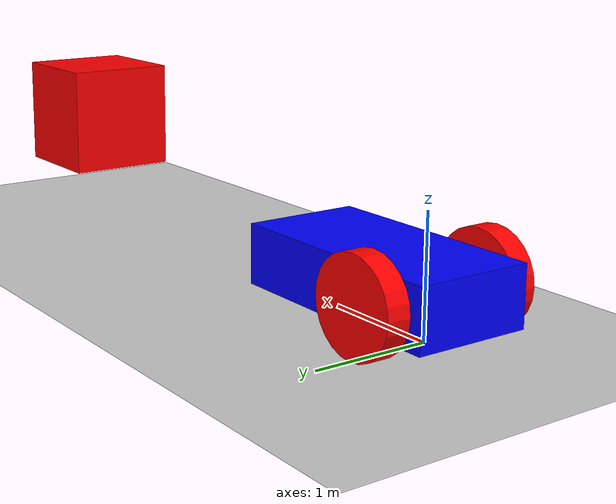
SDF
<?xml version="1.0" ?>
<sdf version="1.7">
  <world name="test_world">

  <!-- Define the physics engine -->
    <physics name="1ms" type="ignored">
      <max_step_size>0.001</max_step_size>
      <real_time_factor>1.0</real_time_factor>
    </physics>
    <plugin
      filename="ignition-gazebo-physics-system"
      name="gz::sim::systems::Physics">
    </plugin>
    <plugin
      filename="ignition-gazebo-sensors-system"
      name="gz::sim::systems::Sensors">
      <render_engine>ogre2</render_engine>
    </plugin>
    <plugin
      filename="ignition-gazebo-scene-broadcaster-system"
      name="gz::sim::systems::SceneBroadcaster">
    </plugin>

    <!-- Add a Sun -->
    <light type="directional" name="sun">
      <pose>0 0 10 0 0 0</pose>
    </light>

    <model name="ground_plane">
      <static>true</static>
      <link name="link">
        <collision name="collision">
          <geometry>
            <plane>
              <normal>0 0 1</normal>
            </plane>
          </geometry>
        </collision>
        <visual name="visual">
          <geometry>
            <plane>
              <normal>0 0 1</normal>
              <size>100 100</size>
            </plane>
          </geometry>
          <material>
            <ambient>0.8 0.8 0.8 1</ambient>
            <diffuse>0.8 0.8 0.8 1</diffuse>
            <specular>0.8 0.8 0.8 1</specular>
          </material>
        </visual>
      </link>
    </model>

    <model name="box">
      <pose>5 0 1 0 0 0</pose>
      <link name="box_link">
        <inertial>
          <inertia>
            <ixx>1</ixx>
            <ixy>0</ixy>
            <ixz>0</ixz>
            <iyy>1</iyy>
            <iyz>0</iyz>
            <izz>1</izz>
          </inertia>
          <mass>1.0</mass>
        </inertial>
        <collision name="box_collision">
          <geometry>
            <box>
              <size>1 1 1</size>
            </box>
          </geometry>
        </collision>

        <visual name="box_visual">
          <geometry>
            <box>
              <size>1 1 1</size>
            </box>
          </geometry>
          <material>
            <ambient>1 0 0 1</ambient>
            <diffuse>1 0 0 1</diffuse>
            <specular>1 0 0 1</specular>
          </material>
        </visual>
      </link>
    </model>

    <model name='vehicle_blue' canonical_link='chassis'>
      <pose relative_to='world'>0 0 0 0 0 0</pose>   <!--the pose is relative to the world by default-->
      <frame name="lidar_frame" attached_to='chassis'>
        <pose>0.8 0 0.5 0 0 0</pose>
      </frame>
      <link name='chassis'>
        <pose relative_to='__model__'>0.5 0 0.4 0 0 0</pose>
        <inertial> <!--inertial properties of the link mass, inertia matix-->
          <mass>1.14395</mass>
          <inertia>
            <ixx>0.126164</ixx>
            <ixy>0</ixy>
            <ixz>0</ixz>
            <iyy>0.416519</iyy>
            <iyz>0</iyz>
            <izz>0.481014</izz>
          </inertia>
        </inertial>
        <visual name='visual'>
          <geometry>
            <box>
              <size>2.0 1.0 0.5</size> <!--question: this size is in meter-->
            </box>
          </geometry>

          <material>
            <ambient>0.0 0.0 1.0 1</ambient>
            <diffuse>0.0 0.0 1.0 1</diffuse>
            <specular>0.0 0.0 1.0 1</specular>
          </material>
        </visual>
        <collision name='collision'> <!--todo: describe why we need the collision-->
          <geometry>
            <box>
              <size>2.0 1.0 0.5</size>
            </box>
          </geometry>
        </collision>
        <sensor name="imu_sensor" type="imu">
          <always_on>1</always_on>
          <update_rate>1</update_rate>
          <visualize>true</visualize>
          <topic>imu</topic>
        </sensor>
        <sensor name='gpu_lidar' type='gpu_lidar'>
          <pose relative_to='lidar_frame'>0 0 0 0 0 0</pose>
          <topic>lidar</topic>
          <update_rate>10</update_rate>
          <ray>
            <scan>
              <horizontal>
                <samples>640</samples>
                <resolution>1</resolution>
                <min_angle>-0.785398</min_angle>  <!-- -π/4 radians -->
                <max_angle>0.785398</max_angle>   <!-- π/4 radians -->
              </horizontal>
              <vertical>
                <samples>480</samples>
                <resolution>1</resolution>
                <min_angle>-0.549778</min_angle>  <!-- -1.099557/2 radians -->
                <max_angle>0.549778</max_angle>   <!-- 1.099557/2 radians -->
              </vertical>
            </scan>
            <range>
              <min>0.08</min>
              <max>10.0</max>
              <resolution>0.01</resolution>
            </range>
          </ray>
          <alwaysOn>1</alwaysOn>
          <visualize>true</visualize>
        </sensor>
      </link>

      <link name='left_wheel'>
        <pose relative_to="chassis">-0.5 0.6 0 -1.5707 0 0</pose> <!--angles are in radian-->
        <inertial>
          <mass>2</mass>
          <inertia>
            <ixx>0.145833</ixx>
            <ixy>0</ixy>
            <ixz>0</ixz>
            <iyy>0.145833</iyy>
            <iyz>0</iyz>
            <izz>0.125</izz>
          </inertia>
        </inertial>
        <visual name='visual'>
          <geometry>
            <cylinder>
              <radius>0.4</radius>
              <length>0.2</length>
            </cylinder>
          </geometry>
          <material>
            <ambient>1.0 0.0 0.0 1</ambient>
            <diffuse>1.0 0.0 0.0 1</diffuse>
            <specular>1.0 0.0 0.0 1</specular>
          </material>
        </visual>
        <collision name='collision'>
          <geometry>
            <cylinder>
              <radius>0.4</radius>
              <length>0.2</length>
            </cylinder>
          </geometry>
        </collision>
      </link>

      <!--copy and paste for right wheel but change position-->
      <link name='right_wheel'>
        <pose relative_to="chassis">-0.5 -0.6 0 -1.5707 0 0</pose> <!--angles are in radian-->
        <inertial>
          <mass>1</mass>
          <inertia>
            <ixx>0.145833</ixx>
            <ixy>0</ixy>
            <ixz>0</ixz>
            <iyy>0.145833</iyy>
            <iyz>0</iyz>
            <izz>0.125</izz>
          </inertia>
        </inertial>
        <visual name='visual'>
          <geometry>
            <cylinder>
              <radius>0.4</radius>
              <length>0.2</length>
            </cylinder>
          </geometry>
          <material>
            <ambient>1.0 0.0 0.0 1</ambient>
            <diffuse>1.0 0.0 0.0 1</diffuse>
            <specular>1.0 0.0 0.0 1</specular>
          </material>
        </visual>
        <collision name='collision'>
          <geometry>
            <cylinder>
              <radius>0.4</radius>
              <length>0.2</length>
            </cylinder>
          </geometry>
        </collision>
      </link>

      <frame name="caster_frame" attached_to='chassis'>
        <pose>0.8 0 -0.2 0 0 0</pose>
      </frame>

      <!--caster wheel-->
      <link name='caster'>
        <pose relative_to='caster_frame'/>
        <inertial>
          <mass>1</mass>
          <inertia>
            <ixx>0.1</ixx>
            <ixy>0</ixy>
            <ixz>0</ixz>
            <iyy>0.1</iyy>
            <iyz>0</iyz>
            <izz>0.1</izz>
          </inertia>
        </inertial>
        <visual name='visual'>
          <geometry>
            <sphere>
              <radius>0.2</radius>
            </sphere>
          </geometry>
          <material>
            <ambient>0.0 1 0.0 1</ambient>
            <diffuse>0.0 1 0.0 1</diffuse>
            <specular>0.0 1 0.0 1</specular>
          </material>
        </visual>
        <collision name='collision'>
          <geometry>
            <sphere>
              <radius>0.2</radius>
            </sphere>
          </geometry>
        </collision>
      </link>

      <!--connecting these links together using joints-->
      <joint name='left_wheel_joint' type='revolute'> <!--continous joint is not supported yet-->
        <pose relative_to='left_wheel'/>
        <parent>chassis</parent>
        <child>left_wheel</child>
        <axis>
          <xyz expressed_in='__model__'>0 1 0</xyz> <!--can be defined as any frame or even arbitrary frames-->
          <limit>
            <lower>-1.79769e+308</lower>    <!--negative infinity-->
            <upper>1.79769e+308</upper>     <!--positive infinity-->
          </limit>
        </axis>
      </joint>

      <joint name='right_wheel_joint' type='revolute'>
        <pose relative_to='right_wheel'/>
        <parent>chassis</parent>
        <child>right_wheel</child>
        <axis>
          <xyz expressed_in='__model__'>0 1 0</xyz>
          <limit>
            <lower>-1.79769e+308</lower>    <!--negative infinity-->
            <upper>1.79769e+308</upper>     <!--positive infinity-->
          </limit>
        </axis>
      </joint>

      <!--different type of joints ball joint--> <!--defult value is the child-->
      <joint name='caster_wheel' type='ball'>
        <parent>chassis</parent>
        <child>caster</child>
      </joint>

      <!--diff drive plugin-->
      <plugin
          filename="libignition-gazebo-diff-drive-system.so"
          name="ignition::gazebo::systems::DiffDrive">
        <left_joint>left_wheel_joint</left_joint>
        <right_joint>right_wheel_joint</right_joint>
        <wheel_separation>1.2</wheel_separation>
        <wheel_radius>0.4</wheel_radius>
        <odom_publish_frequency>1</odom_publish_frequency>
        <topic>cmd_vel</topic>
      </plugin>

      <frame name="depth_frame" attached_to='chassis'>
        <pose>0.8 0 0.5 0 0 0</pose>
      </frame>

    </model>

    <!-- Include your robot model -->
  </world>
</sdf>
